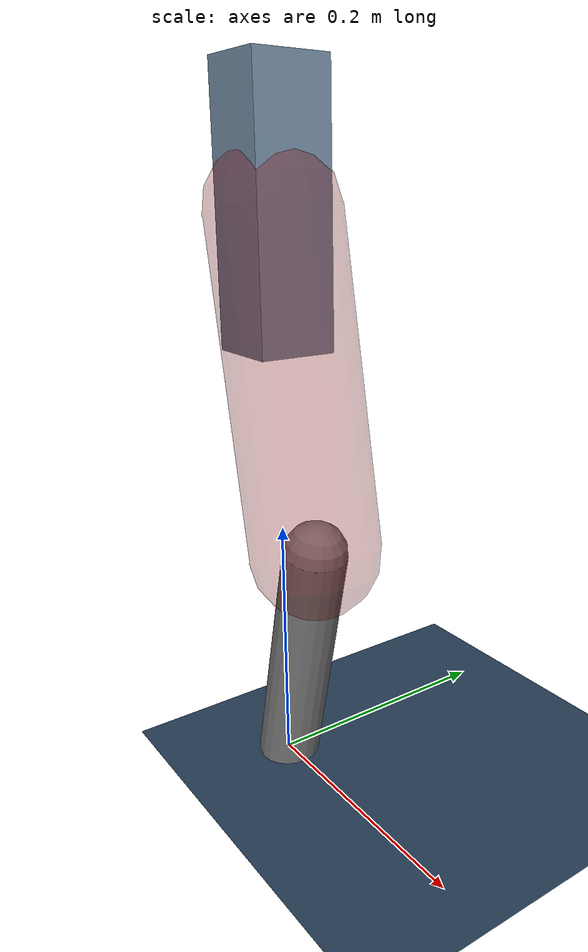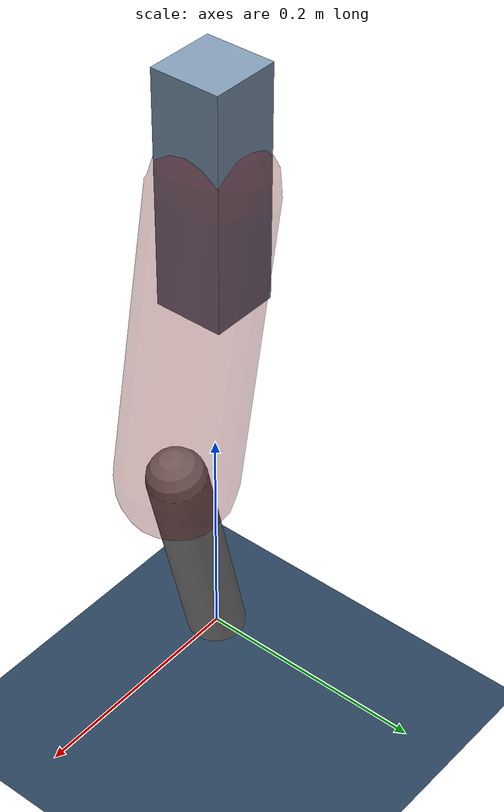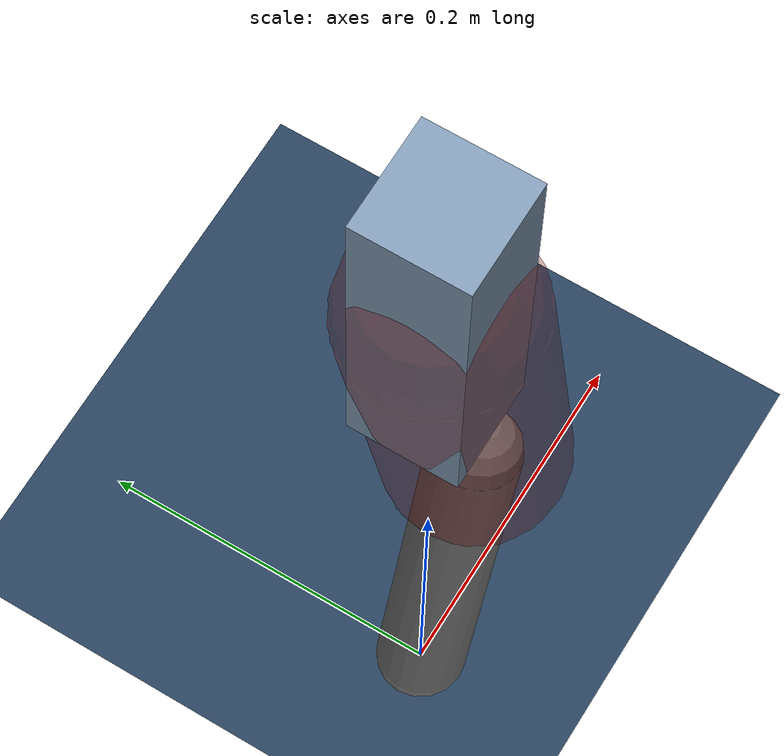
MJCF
<mujoco model="Hopper2D">
	<compiler inertiafromgeom="true" angle="radian" />
	<option timestep="0.001" integrator="implicit" cone="elliptic" solver="Newton" tolerance="1e-10" />

	<default>
		<geom contype="1" conaffinity="1" condim="3" friction="2 0.005 0.0001" solref="0.005 1" />
		<joint limited="true" damping="0.1" />
	</default>

	<asset>
		<texture name="skybox" type="skybox" builtin="gradient" rgb1=".4 .6 .8" rgb2="0 0 0" width="800" height="800" />
		<texture name="grid" type="2d" builtin="checker" rgb1=".1 .2 .3" rgb2=".2 .3 .4" width="300" height="300" mark="edge" markrgb=".2 .3 .4" />
		<material name="ground" texture="grid" texrepeat="1 1" texuniform="true" reflectance="0.1" />
		<material name="leg" rgba="0.5 0.6 0.7 1" />
	</asset>

	<worldbody>

		<geom name="floor" type="plane" size="5 5 0.25" material="ground" />

		<light directional="false" diffuse="0.8 0.8 0.8" specular="0.3 0.3 0.3" pos="0 0 2" dir="0 0 -1" />
		<light mode="targetbodycom" target="base" directional="false" diffuse="0.8 0.8 0.8" specular="0.3 0.3 0.3" pos="0 0 2" dir="0 0 -1" />

		<camera name="fixed" pos="0 -2 1" xyaxes="1 0 0 0 0 1" />
		<camera name="tracking" mode="trackcom" pos="0 -3 1" />

		<body name="root" pos="0 0 0.4405564984338512">
			<joint name="slide_x" type="slide" axis="1 0 0" range="-100 100" />
			<joint name="slide_z" type="slide" axis="0 0 1" range="0 10" />

			<body name="base" pos="0 0 0">
				<geom name="torso" type="box" size="0.03 0.03 0.1" mass="5.2010000000000005" material="leg" />

				<body name="link1" pos="0 0 0" euler="0 1.3819119173194827 0">
					<joint type="hinge" axis="0 -1 0" pos="0 0 0" name="hinge1" limited="true" range="-3.14 3.14" stiffness="0" damping="0.1" />
					<geom name="thigh" type="capsule" fromto="0 0 0 0.24981301492523522 0 0" size="0.05" rgba="0.5 0 0 0.3" mass="0.8559138388056117" />

					<body name="link2" pos="0.24981301492523522 0 0" euler="0 0.4247245199098472 0">
						<joint type="hinge" axis="0 -1 0" pos="0 0 0" name="hinge2" limited="true" range="-3.14 3.14" stiffness="0" damping="0.1" />
						<geom name="shank" type="capsule" fromto="0 0 0 0.20074348350861598 0 0" size="0.025" mass="0.40149478680689277" />

					</body>
				</body>
			</body>
		</body>
	</worldbody>

	<actuator>
		<motor name="torque1" joint="hinge1" ctrlrange="-283.5302942571259 283.5302942571259" ctrllimited="true" gear="1" />
		<motor name="torque2" joint="hinge2" ctrlrange="-193.42938640252063 193.42938640252063" ctrllimited="true" gear="1" />
	</actuator>
</mujoco>
